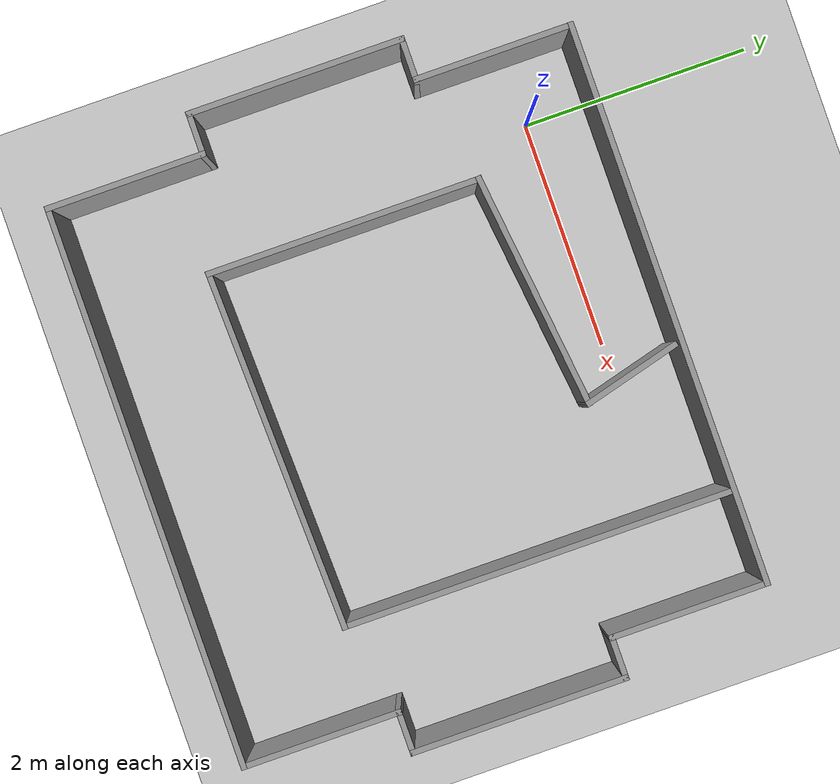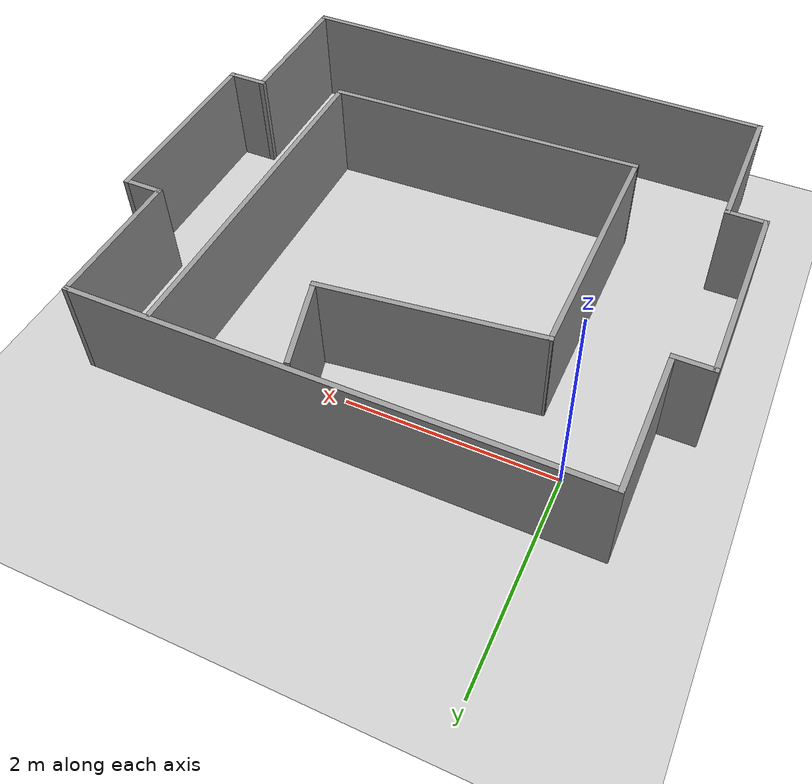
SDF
<sdf version="1.6">
 <world name="default">
  <light name="sun" type="directional">
   <pose>0 0 10 0 -0 0</pose>
   <diffuse>0.8 0.8 0.8 1</diffuse>
   <specular>0.2 0.2 0.2 1</specular>
   <attenuation>
    <range>1000</range>
    <constant>0.9</constant>
    <linear>0.01</linear>
    <quadratic>0.001</quadratic>
   </attenuation>
   <direction>-0.5 0.1 -0.9</direction>
  </light>
  <model name="ground_plane">
   <static>1</static>
   <link name="link">
    <collision name="collision">
     <geometry><plane><normal>0 0 1</normal><size>100 100</size></plane></geometry>
     <surface><friction><ode><mu>100</mu><mu2>50</mu2></ode></friction></surface>
    </collision>
    <visual name="visual">
     <cast_shadows>0</cast_shadows>
     <geometry><plane><normal>0 0 1</normal><size>100 100</size></plane></geometry>
     <material>
      <script><uri>file://media/materials/scripts/gazebo.material</uri><name>Gazebo/Grey</name></script>
     </material>
    </visual>
   </link>
  </model>
  <gravity>0 0 -9.8</gravity>
  <magnetic_field>6e-06 2.3e-05 -4.2e-05</magnetic_field>
  <atmosphere type="adiabatic"/>
  <physics name="default_physics" default="0" type="ode">
   <max_step_size>0.001</max_step_size>
   <real_time_factor>1</real_time_factor>
   <real_time_update_rate>1000</real_time_update_rate>
  </physics>
  <scene><ambient>0.4 0.4 0.4 1</ambient><background>0.7 0.7 0.7 1</background><shadows>1</shadows></scene>
  <spherical_coordinates>
   <surface_model>EARTH_WGS84</surface_model>
   <latitude_deg>0</latitude_deg>
   <longitude_deg>0</longitude_deg>
   <elevation>0</elevation>
   <heading_deg>0</heading_deg>
  </spherical_coordinates>
  <model name="rgarena2-3">
   <pose>1.8647 -1.7261 0 0 0 -1.56931</pose>
   <link name="Wall_0">
    <collision name="Wall_0_Collision">
     <geometry><box><size>4.9 0.05 1</size></box></geometry>
     <pose>0 0 0.5 0 -0 0</pose>
    </collision>
    <visual name="Wall_0_Visual">
     <pose>0 0 0.5 0 -0 0</pose>
     <geometry><box><size>4.9 0.05 1</size></box></geometry>
     <material>
      <script><uri>file://media/materials/scripts/gazebo.material</uri><name>Gazebo/Grey</name></script>
      <ambient>1 1 1 1</ambient>
     </material>
     <meta><layer>0</layer></meta>
    </visual>
    <pose>-2.275 -0 0 0 -0 -1.5708</pose>
   </link>
   <link name="Wall_1">
    <collision name="Wall_1_Collision">
     <geometry><box><size>1.4 0.05 1</size></box></geometry>
     <pose>0 0 0.5 0 -0 0</pose>
    </collision>
    <visual name="Wall_1_Visual">
     <pose>0 0 0.5 0 -0 0</pose>
     <geometry><box><size>1.4 0.05 1</size></box></geometry>
     <material>
      <script><uri>file://media/materials/scripts/gazebo.material</uri><name>Gazebo/Grey</name></script>
      <ambient>1 1 1 1</ambient>
     </material>
     <meta><layer>0</layer></meta>
    </visual>
    <pose>-1.6 -2.425 0 0 -0 0</pose>
   </link>
   <link name="Wall_13">
    <collision name="Wall_13_Collision">
     <geometry><box><size>1.9 0.05 1</size></box></geometry>
     <pose>0 0 0.5 0 -0 0</pose>
    </collision>
    <visual name="Wall_13_Visual">
     <pose>0 0 0.5 0 -0 0</pose>
     <geometry><box><size>1.9 0.05 1</size></box></geometry>
     <material>
      <script><uri>file://media/materials/scripts/gazebo.material</uri><name>Gazebo/Grey</name></script>
      <ambient>1 1 1 1</ambient>
     </material>
     <meta><layer>0</layer></meta>
    </visual>
    <pose>-0 2.775 0 0 -0 3.14159</pose>
   </link>
   <link name="Wall_14">
    <collision name="Wall_14_Collision">
     <geometry><box><size>0.4 0.05 1</size></box></geometry>
     <pose>0 0 0.5 0 -0 0</pose>
    </collision>
    <visual name="Wall_14_Visual">
     <pose>0 0 0.5 0 -0 0</pose>
     <geometry><box><size>0.4 0.05 1</size></box></geometry>
     <material>
      <script><uri>file://media/materials/scripts/gazebo.material</uri><name>Gazebo/Grey</name></script>
      <ambient>1 1 1 1</ambient>
     </material>
     <meta><layer>0</layer></meta>
    </visual>
    <pose>-0.925 2.6 0 0 -0 -1.5708</pose>
   </link>
   <link name="Wall_15">
    <collision name="Wall_15_Collision">
     <geometry><box><size>1.4 0.05 1</size></box></geometry>
     <pose>0 0 0.5 0 -0 0</pose>
    </collision>
    <visual name="Wall_15_Visual">
     <pose>0 0 0.5 0 -0 0</pose>
     <geometry><box><size>1.4 0.05 1</size></box></geometry>
     <material>
      <script><uri>file://media/materials/scripts/gazebo.material</uri><name>Gazebo/Grey</name></script>
      <ambient>1 1 1 1</ambient>
     </material>
     <meta><layer>0</layer></meta>
    </visual>
    <pose>-1.6 2.425 0 0 -0 3.14159</pose>
   </link>
   <link name="Wall_2">
    <collision name="Wall_2_Collision">
     <geometry><box><size>0.4 0.05 1</size></box></geometry>
     <pose>0 0 0.5 0 -0 0</pose>
    </collision>
    <visual name="Wall_2_Visual">
     <pose>0 0 0.5 0 -0 0</pose>
     <geometry><box><size>0.4 0.05 1</size></box></geometry>
     <material>
      <script><uri>file://media/materials/scripts/gazebo.material</uri><name>Gazebo/Grey</name></script>
      <ambient>1 1 1 1</ambient>
     </material>
     <meta><layer>0</layer></meta>
    </visual>
    <pose>-0.925 -2.6 0 0 -0 -1.5708</pose>
   </link>
   <link name="Wall_3">
    <collision name="Wall_3_Collision">
     <geometry><box><size>1.9 0.05 1</size></box></geometry>
     <pose>0 0 0.5 0 -0 0</pose>
    </collision>
    <visual name="Wall_3_Visual">
     <pose>0 0 0.5 0 -0 0</pose>
     <geometry><box><size>1.9 0.05 1</size></box></geometry>
     <material>
      <script><uri>file://media/materials/scripts/gazebo.material</uri><name>Gazebo/Grey</name></script>
      <ambient>1 1 1 1</ambient>
     </material>
     <meta><layer>0</layer></meta>
    </visual>
    <pose>-0 -2.775 0 0 -0 0</pose>
   </link>
   <link name="Wall_4">
    <collision name="Wall_4_Collision">
     <geometry><box><size>0.4 0.05 1</size></box></geometry>
     <pose>0 0 0.5 0 -0 0</pose>
    </collision>
    <visual name="Wall_4_Visual">
     <pose>0 0 0.5 0 -0 0</pose>
     <geometry><box><size>0.4 0.05 1</size></box></geometry>
     <material>
      <script><uri>file://media/materials/scripts/gazebo.material</uri><name>Gazebo/Grey</name></script>
      <ambient>1 1 1 1</ambient>
     </material>
     <meta><layer>0</layer></meta>
    </visual>
    <pose>0.925 -2.6 0 0 -0 1.5708</pose>
   </link>
   <link name="Wall_42">
    <collision name="Wall_42_Collision">
     <geometry><box><size>0.899565 0.05 1</size></box></geometry>
     <pose>0 0 0.5 0 -0 0</pose>
    </collision>
    <visual name="Wall_42_Visual">
     <pose>0 0 0.5 0 -0 0</pose>
     <geometry><box><size>0.899565 0.05 1</size></box></geometry>
     <material>
      <script><uri>file://media/materials/scripts/gazebo.material</uri><name>Gazebo/Grey</name></script>
      <ambient>1 1 1 1</ambient>
     </material>
     <meta><layer>0</layer></meta>
    </visual>
    <pose>-1.7955 0.442 0 0 -0 0.261815</pose>
   </link>
   <link name="Wall_43">
    <collision name="Wall_43_Collision">
     <geometry><box><size>2.09967 0.05 1</size></box></geometry>
     <pose>0 0 0.5 0 -0 0</pose>
    </collision>
    <visual name="Wall_43_Visual">
     <pose>0 0 0.5 0 -0 0</pose>
     <geometry><box><size>2.09967 0.05 1</size></box></geometry>
     <material>
      <script><uri>file://media/materials/scripts/gazebo.material</uri><name>Gazebo/Grey</name></script>
      <ambient>1 1 1 1</ambient>
     </material>
     <meta><layer>0</layer></meta>
    </visual>
    <pose>-1.2645 -0.4655 0 0 -0 -1.45292</pose>
   </link>
   <link name="Wall_44">
    <collision name="Wall_44_Collision">
     <geometry><box><size>2.4 0.05 1</size></box></geometry>
     <pose>0 0 0.5 0 -0 0</pose>
    </collision>
    <visual name="Wall_44_Visual">
     <pose>0 0 0.5 0 -0 0</pose>
     <geometry><box><size>2.4 0.05 1</size></box></geometry>
     <material>
      <script><uri>file://media/materials/scripts/gazebo.material</uri><name>Gazebo/Grey</name></script>
      <ambient>1 1 1 1</ambient>
     </material>
     <meta><layer>0</layer></meta>
    </visual>
    <pose>0.031 -1.483 0 0 -0 0</pose>
   </link>
   <link name="Wall_45">
    <collision name="Wall_45_Collision">
     <geometry><box><size>3.15137 0.05 1</size></box></geometry>
     <pose>0 0 0.5 0 -0 0</pose>
    </collision>
    <visual name="Wall_45_Visual">
     <pose>0 0 0.5 0 -0 0</pose>
     <geometry><box><size>3.15137 0.05 1</size></box></geometry>
     <material>
      <script><uri>file://media/materials/scripts/gazebo.material</uri><name>Gazebo/Grey</name></script>
      <ambient>1 1 1 1</ambient>
     </material>
     <meta><layer>0</layer></meta>
    </visual>
    <pose>1.16 0.067 0 0 -0 1.60047</pose>
   </link>
   <link name="Wall_46">
    <collision name="Wall_46_Collision">
     <geometry><box><size>3.40047 0.05 1</size></box></geometry>
     <pose>0 0 0.5 0 -0 0</pose>
    </collision>
    <visual name="Wall_46_Visual">
     <pose>0 0 0.5 0 -0 0</pose>
     <geometry><box><size>3.40047 0.05 1</size></box></geometry>
     <material>
      <script><uri>file://media/materials/scripts/gazebo.material</uri><name>Gazebo/Grey</name></script>
      <ambient>1 1 1 1</ambient>
     </material>
     <meta><layer>0</layer></meta>
    </visual>
    <pose>-0.561 1.617 0 0 -0 3.14159</pose>
   </link>
   <link name="Wall_5">
    <collision name="Wall_5_Collision">
     <geometry><box><size>1.4 0.05 1</size></box></geometry>
     <pose>0 0 0.5 0 -0 0</pose>
    </collision>
    <visual name="Wall_5_Visual">
     <pose>0 0 0.5 0 -0 0</pose>
     <geometry><box><size>1.4 0.05 1</size></box></geometry>
     <material>
      <script><uri>file://media/materials/scripts/gazebo.material</uri><name>Gazebo/Grey</name></script>
      <ambient>1 1 1 1</ambient>
     </material>
     <meta><layer>0</layer></meta>
    </visual>
    <pose>1.6 -2.425 0 0 -0 0</pose>
   </link>
   <link name="Wall_6">
    <collision name="Wall_6_Collision">
     <geometry><box><size>4.9 0.05 1</size></box></geometry>
     <pose>0 0 0.5 0 -0 0</pose>
    </collision>
    <visual name="Wall_6_Visual">
     <pose>0 0 0.5 0 -0 0</pose>
     <geometry><box><size>4.9 0.05 1</size></box></geometry>
     <material>
      <script><uri>file://media/materials/scripts/gazebo.material</uri><name>Gazebo/Grey</name></script>
      <ambient>1 1 1 1</ambient>
     </material>
     <meta><layer>0</layer></meta>
    </visual>
    <pose>2.275 -0 0 0 -0 1.5708</pose>
   </link>
   <link name="Wall_7">
    <collision name="Wall_7_Collision">
     <geometry><box><size>1.4 0.05 1</size></box></geometry>
     <pose>0 0 0.5 0 -0 0</pose>
    </collision>
    <visual name="Wall_7_Visual">
     <pose>0 0 0.5 0 -0 0</pose>
     <geometry><box><size>1.4 0.05 1</size></box></geometry>
     <material>
      <script><uri>file://media/materials/scripts/gazebo.material</uri><name>Gazebo/Grey</name></script>
      <ambient>1 1 1 1</ambient>
     </material>
     <meta><layer>0</layer></meta>
    </visual>
    <pose>1.6 2.425 0 0 -0 3.14159</pose>
   </link>
   <link name="Wall_9">
    <collision name="Wall_9_Collision">
     <geometry><box><size>0.4 0.05 1</size></box></geometry>
     <pose>0 0 0.5 0 -0 0</pose>
    </collision>
    <visual name="Wall_9_Visual">
     <pose>0 0 0.5 0 -0 0</pose>
     <geometry><box><size>0.4 0.05 1</size></box></geometry>
     <material>
      <script><uri>file://media/materials/scripts/gazebo.material</uri><name>Gazebo/Grey</name></script>
      <ambient>1 1 1 1</ambient>
     </material>
     <meta><layer>0</layer></meta>
    </visual>
    <pose>0.925 2.6 0 0 -0 1.5708</pose>
   </link>
   <static>1</static>
  </model>
 </world>
</sdf>
